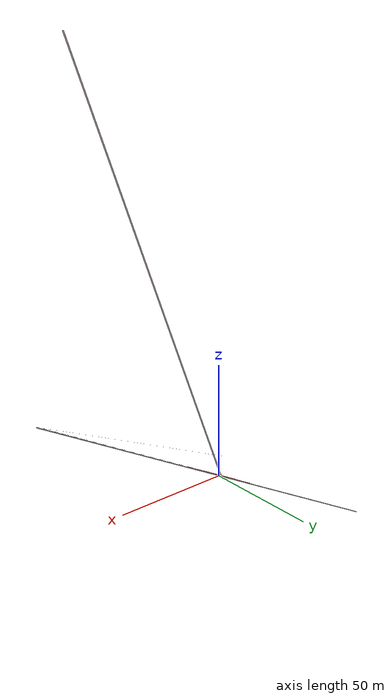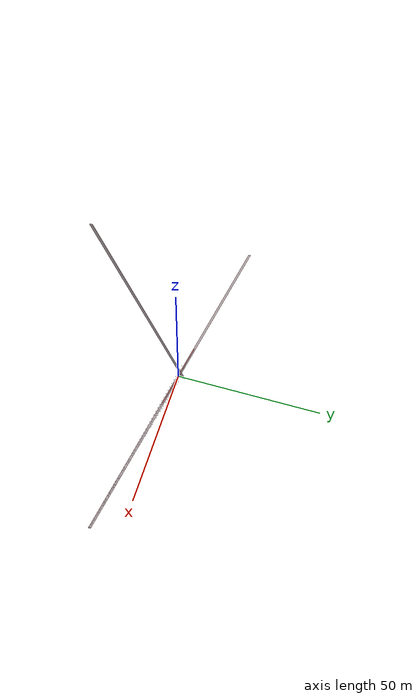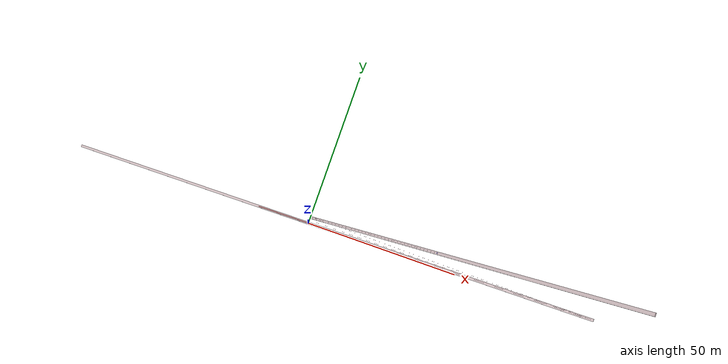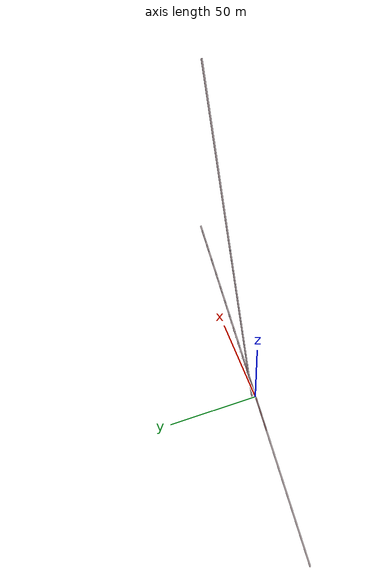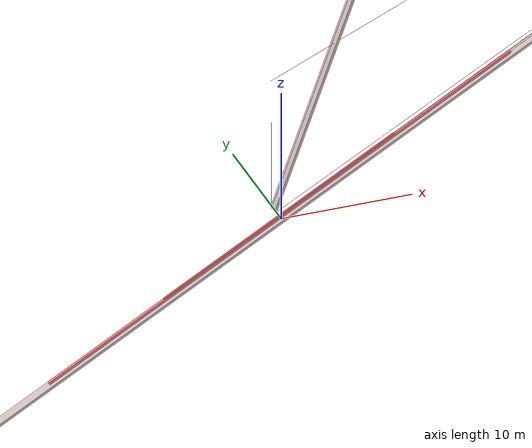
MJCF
<mujoco>
            <compiler angle="radian" autolimits="true" />
            <compiler meshdir="asset" texturedir="asset" assetdir="asset" />
            <option gravity="0 0 -9.81" />
            <default class="main">
            <geom friction="0 0 0" solimp="0.9 1 0.001 0.01 20" solref="0.02 1" condim="1" />
        </default>

        <visual>
            <headlight diffuse="0.7 0.7 0.7" ambient="0.5 0.5 0.5" />
            <global offwidth="1920" offheight="1080" />
        </visual>

        <asset>
            <texture type="skybox" builtin="gradient" rgb1="0 0.5 0.7" rgb2="0 0 0" width="512" height="512" />
            <texture type="2d" name="checks1" builtin="checker" rgb1="1 1 1" rgb2="0 0 0" width="256" height="256" />
            <material name="test_color" texture="checks1" texuniform="true" texrepeat="2 2" />
            <material name="reflectance" reflectance=".4" />
            <texture name="grid" type="2d" builtin="checker" width="512" height="512" rgb1="1.0 0.6235 0.1098" rgb2="1.0 0.749 0.4118" />
            <texture name="white-texture-background" type="2d" file="/home/aryansatpathy/DevStuff/cmu/PHO/sim/geom_sources/fixed_sources/rocket/rocket.white-texture-background.png" content_type="image/png" />
            <material name="pulley" texture="grid" texrepeat="2 2" texuniform="true" />

        </asset>
        <worldbody><body name="stackedmassplane_0.mass0" pos="-0.1 0.0 0.17320508075688776" quat="0.9659258262890683 0.0 -0.25881904510252074 0.0">
<geom name="stackedmassplane_0.mass0.geom" type="box" pos="0 0 0" size="20.0 0.1 0.1" rgba="1.0 0.5 0.5 1.0" mass="6.29" quat="0 0 0 1" condim="1" contype="1" conaffinity="1" />
<site name="stackedmassplane_0.mass0.top-1" pos="0.0 0 0.1" quat="0.9659258262890683 -0.0 0.25881904510252074 -0.0" />
<site name="stackedmassplane_0.mass0.sensor" pos="0 0 0" quat="0.9659258262890683 -0.0 0.25881904510252074 -0.0" />
<site name="stackedmassplane_0.mass0.center" pos="0 0 0" quat="0.9659258262890683 -0.0 0.25881904510252074 -0.0" />
<site name="stackedmassplane_0.mass0.left" pos="-20.0 0 0" quat="0.9659258262890683 -0.0 0.25881904510252074 -0.0" />
<site name="stackedmassplane_0.mass0.right" pos="20.0 0 0" quat="0.9659258262890683 -0.0 0.25881904510252074 -0.0" />
<site name="stackedmassplane_0.mass0.bottom" pos="0 0 -0.1" quat="0.9659258262890683 -0.0 0.25881904510252074 -0.0" />
<joint name="stackedmassplane_0.mass0.joint" type="free" axis="1 1 1" pos="0 0 0" />
</body>
<body name="stackedmassplane_0.mass1" pos="-0.175 0.0 0.30310889132455354" quat="0.9659258262890683 0.0 -0.25881904510252074 0.0">
<geom name="stackedmassplane_0.mass1.geom" type="box" pos="0 0 0" size="10.0 0.05 0.05" rgba="1.0 0.5 0.5 1.0" mass="1.08" quat="0 0 0 1" condim="1" contype="1" conaffinity="1" />
<site name="stackedmassplane_0.mass1.top-1" pos="0.0 0 0.05" quat="0.9659258262890683 -0.0 0.25881904510252074 -0.0" />
<site name="stackedmassplane_0.mass1.sensor" pos="0 0 0" quat="0.9659258262890683 -0.0 0.25881904510252074 -0.0" />
<site name="stackedmassplane_0.mass1.center" pos="0 0 0" quat="0.9659258262890683 -0.0 0.25881904510252074 -0.0" />
<site name="stackedmassplane_0.mass1.left" pos="-10.0 0 0" quat="0.9659258262890683 -0.0 0.25881904510252074 -0.0" />
<site name="stackedmassplane_0.mass1.right" pos="10.0 0 0" quat="0.9659258262890683 -0.0 0.25881904510252074 -0.0" />
<site name="stackedmassplane_0.mass1.bottom" pos="0 0 -0.05" quat="0.9659258262890683 -0.0 0.25881904510252074 -0.0" />
<joint name="stackedmassplane_0.mass1.joint" type="free" axis="1 1 1" pos="0 0 0" />
</body>
<body name="stackedmassplane_0.plane" pos="0.0 0.0 0.0" quat="0.9659258262890683 0.0 -0.25881904510252074 0.0"><geom name="stackedmassplane_0.plane.geom" type="box" pos="0 0 0" size="100 0.4 0.1" material="reflectance" rgba="0.82745098 0.75686275 0.76470588 1" mass="1.0" quat="0 0 0 1" condim="1" contype="1" conaffinity="1" />
<site name="stackedmassplane_0.plane.sensor" pos="0 0 0" quat="0.9659258262890683 -0.0 0.25881904510252074 -0.0" />
<site name="stackedmassplane_0.plane.left" pos="-100.05 0 0.2" quat="0.9659258262890683 -0.0 0.25881904510252074 -0.0" />
<site name="stackedmassplane_0.plane.right" pos="100.05 0 0.2" quat="0.9659258262890683 -0.0 0.25881904510252074 -0.0" />
<site name="stackedmassplane_0.plane.left-0" pos="-100.05 0 0.2" quat="0.9659258262890683 -0.0 0.25881904510252074 -0.0" />
<site name="stackedmassplane_0.plane.right-0" pos="100.05 0 0.2" quat="0.9659258262890683 -0.0 0.25881904510252074 -0.0" />
<site name="stackedmassplane_0.plane.left-1" pos="-100.05 0 0.35" quat="0.9659258262890683 -0.0 0.25881904510252074 -0.0" />
<site name="stackedmassplane_0.plane.right-1" pos="100.05 0 0.35" quat="0.9659258262890683 -0.0 0.25881904510252074 -0.0" />
</body>
<body name="fixed_pulley_entity_1" pos="0.0 1.0 0.0" quat="1.0 0.0 0.0 0.0"><site name="fixed_pulley_entity_1.site" pos="0 0 0.0" quat="1.0 -0.0 -0.0 -0.0" />
</body>
<body name="mass_with_fixed_pulley_entity_2.fixed_pulley" pos="0.0 2.0 10.0" quat="1.0 0.0 0.0 0.0"><site name="mass_with_fixed_pulley_entity_2.fixed_pulley.site" pos="0 0 0.0" quat="1.0 -0.0 -0.0 -0.0" />
</body>
<body name="mass_with_fixed_pulley_entity_2.mass_plane.mass0" pos="34.21911533973316 2.0 93.76624670963011" quat="0.8191520442889918 0.0 -0.573576436351046 0.0">
<geom name="mass_with_fixed_pulley_entity_2.mass_plane.mass0.geom" type="box" pos="0 0 0" size="0.1 0.1 0.1" rgba="0.5 0.5 1.0 1.0" mass="200" quat="0 0 0 1" condim="1" contype="1" conaffinity="1" />
<site name="mass_with_fixed_pulley_entity_2.mass_plane.mass0.top-1" pos="0.0 0 0.1" quat="0.8191520442889919 -0.0 0.5735764363510462 -0.0" />
<site name="mass_with_fixed_pulley_entity_2.mass_plane.mass0.sensor" pos="0 0 0" quat="0.8191520442889919 -0.0 0.5735764363510462 -0.0" />
<site name="mass_with_fixed_pulley_entity_2.mass_plane.mass0.center" pos="0 0 0" quat="0.8191520442889919 -0.0 0.5735764363510462 -0.0" />
<site name="mass_with_fixed_pulley_entity_2.mass_plane.mass0.left" pos="-0.1 0 0" quat="0.8191520442889919 -0.0 0.5735764363510462 -0.0" />
<site name="mass_with_fixed_pulley_entity_2.mass_plane.mass0.right" pos="0.1 0 0" quat="0.8191520442889919 -0.0 0.5735764363510462 -0.0" />
<site name="mass_with_fixed_pulley_entity_2.mass_plane.mass0.bottom" pos="0 0 -0.1" quat="0.8191520442889919 -0.0 0.5735764363510462 -0.0" />
<joint name="mass_with_fixed_pulley_entity_2.mass_plane.mass0.joint" type="free" axis="1 1 1" pos="0 0 0" />
</body>
<body name="mass_with_fixed_pulley_entity_2.mass_plane.plane" pos="34.40705386389034 2.0 93.69784268096498" quat="0.8191520442889918 0.0 -0.573576436351046 0.0"><geom name="mass_with_fixed_pulley_entity_2.mass_plane.plane.geom" type="box" pos="0 0 0" size="100 0.4 0.1" material="reflectance" rgba="0.82745098 0.75686275 0.76470588 1" mass="1.0" quat="0 0 0 1" condim="1" contype="1" conaffinity="1" />
<site name="mass_with_fixed_pulley_entity_2.mass_plane.plane.sensor" pos="0 0 0" quat="0.8191520442889919 -0.0 0.5735764363510462 -0.0" />
<site name="mass_with_fixed_pulley_entity_2.mass_plane.plane.left" pos="-100.05 0 0.2" quat="0.8191520442889919 -0.0 0.5735764363510462 -0.0" />
<site name="mass_with_fixed_pulley_entity_2.mass_plane.plane.right" pos="100.05 0 0.2" quat="0.8191520442889919 -0.0 0.5735764363510462 -0.0" />
<site name="mass_with_fixed_pulley_entity_2.mass_plane.plane.additional_site-0" pos="-100.00301536896069 0.0 0.21710100716627778" quat="0.8191520442889919 -0.0 0.5735764363510462 -0.0" />
</body>

</worldbody><tendon>
<spatial name="spatial_0" width="0.01" rgba="0.9686 0.8392 0.8784 1" range="0 190.10560953789647" limited="true" solimplimit="0.99 1 0.001 0.01 20" solreflimit="0.02 1">
<site site="stackedmassplane_0.mass1.right" />
<site site="stackedmassplane_0.plane.right-1" />
<site site="fixed_pulley_entity_1.site" />
</spatial>
</tendon>
<tendon>
<spatial name="spatial_1" width="0.01" rgba="0.9686 0.8392 0.8784 1" range="0 285.696730684633" limited="true" solimplimit="0.99 1 0.001 0.01 20" solreflimit="0.02 1">
<site site="stackedmassplane_0.mass0.right" />
<site site="stackedmassplane_0.plane.right-0" />
<site site="mass_with_fixed_pulley_entity_2.fixed_pulley.site" />
<site site="mass_with_fixed_pulley_entity_2.mass_plane.plane.additional_site-0" />
<site site="mass_with_fixed_pulley_entity_2.mass_plane.plane.left" />
<site site="mass_with_fixed_pulley_entity_2.mass_plane.mass0.left" />
</spatial>
</tendon>

        <sensor>

        </sensor>
        <custom>

        </custom>
        <contact>

        </contact>
        <actuator>

        </actuator>
    </mujoco>
